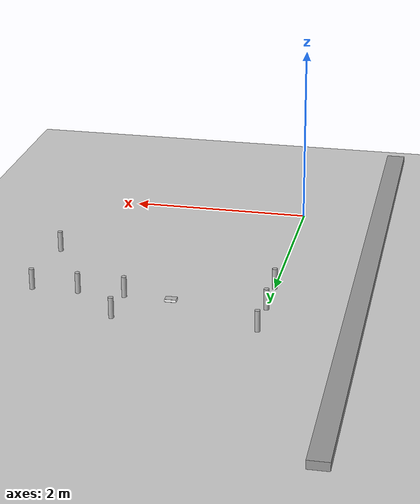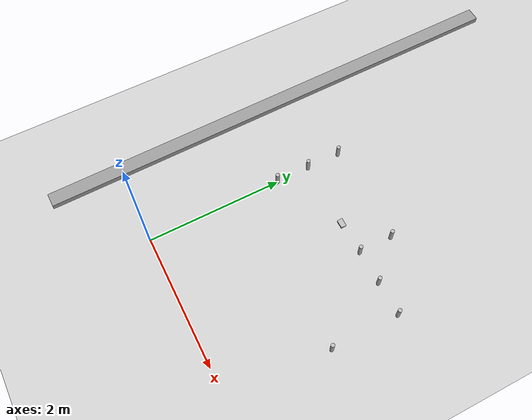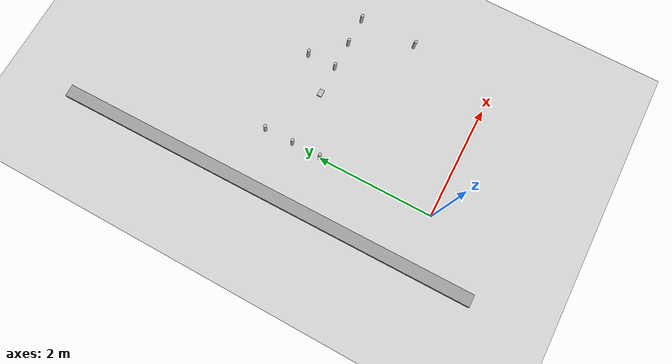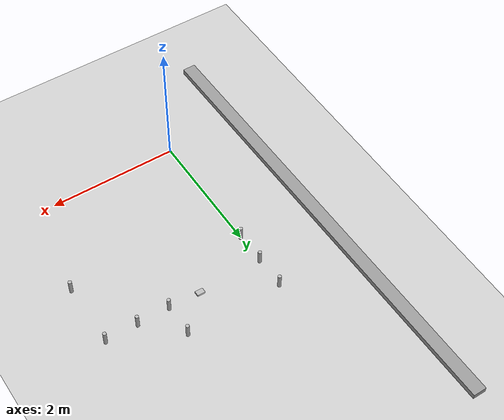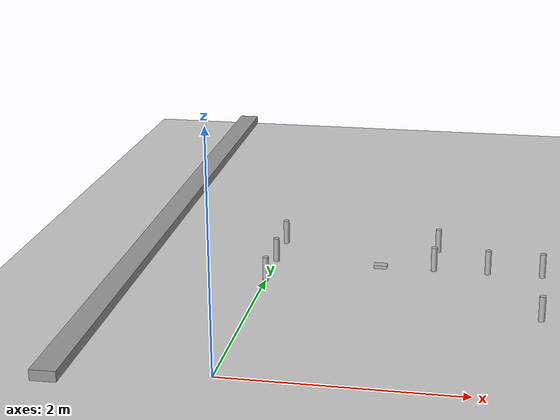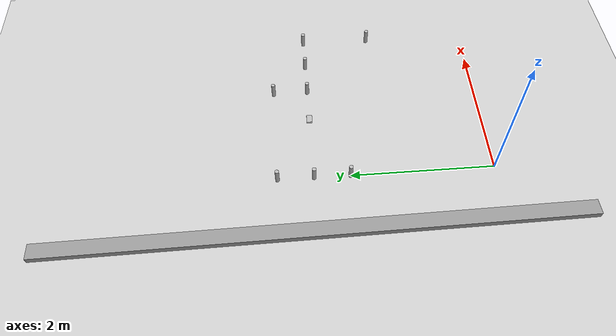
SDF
<sdf version="1.6">
 <world name="default">
  <model name="ground_plane">
   <static>1</static>
   <link name="link">
    <collision name="collision">
     <geometry><plane><normal>0 0 1</normal><size>100 100</size></plane></geometry>
     <surface><friction><ode><mu>100</mu><mu2>50</mu2></ode></friction></surface>
    </collision>
    <visual name="visual">
     <cast_shadows>0</cast_shadows>
     <geometry><plane><normal>0 0 1</normal><size>100 100</size></plane></geometry>
     <material>
      <script><uri>file://media/materials/scripts/gazebo.material</uri><name>Gazebo/Grey</name></script>
     </material>
    </visual>
   </link>
  </model>
  <model name="wall1">
   <static>1</static>
   <link name="link">
    <pose>0 0 0.42 0 -0 0</pose>
    <collision name="collision"><geometry><box><size>7 0.2 0.084</size></box></geometry></collision>
    <visual name="visual">
     <cast_shadows>0</cast_shadows>
     <geometry><box><size>7 0.2 0.084</size></box></geometry>
     <material>
      <script>
       <uri>model://grey_wall/materials/scripts</uri>
       <uri>model://grey_wall/materials/textures</uri>
       <name>vrc/grey_wall</name>
      </script>
     </material>
    </visual>
   </link>
   <pose>-1 2.5 0 0 -0 -1.55905</pose>
  </model>
  <model name="can0.02.0">
   <link name="link">
    <pose>0 0 0.115 0 -0 0</pose>
    <inertial>
     <mass>39</mass>
     <inertia><ixx>0.00058</ixx><ixy>0</ixy><ixz>0</ixz><iyy>0.00058</iyy><iyz>0</iyz><izz>0.00019</izz></inertia>
    </inertial>
    <collision name="collision">
     <geometry><cylinder><radius>0.0275</radius><length>0.23</length></cylinder></geometry>
    </collision>
    <visual name="visual">
     <geometry><cylinder><radius>0.0275</radius><length>0.23</length></cylinder></geometry>
     <material>
      <script>
       <uri>model://beer/materials/scripts</uri>
       <uri>model://beer/materials/textures</uri>
       <name>Beer/Diffuse</name>
      </script>
     </material>
    </visual>
   </link>
   <pose>0.0 2.0 -2e-06 1e-06 0 -9.5e-05</pose>
  </model>
  <model name="can0.02.5">
   <link name="link">
    <pose>0 0 0.115 0 -0 0</pose>
    <inertial>
     <mass>39</mass>
     <inertia><ixx>0.00058</ixx><ixy>0</ixy><ixz>0</ixz><iyy>0.00058</iyy><iyz>0</iyz><izz>0.00019</izz></inertia>
    </inertial>
    <collision name="collision">
     <geometry><cylinder><radius>0.0275</radius><length>0.23</length></cylinder></geometry>
    </collision>
    <visual name="visual">
     <geometry><cylinder><radius>0.0275</radius><length>0.23</length></cylinder></geometry>
     <material>
      <script>
       <uri>model://beer/materials/scripts</uri>
       <uri>model://beer/materials/textures</uri>
       <name>Beer/Diffuse</name>
      </script>
     </material>
    </visual>
   </link>
   <pose>0.0 2.5 -2e-06 1e-06 0 -9.5e-05</pose>
  </model>
  <model name="can0.03.0">
   <link name="link">
    <pose>0 0 0.115 0 -0 0</pose>
    <inertial>
     <mass>39</mass>
     <inertia><ixx>0.00058</ixx><ixy>0</ixy><ixz>0</ixz><iyy>0.00058</iyy><iyz>0</iyz><izz>0.00019</izz></inertia>
    </inertial>
    <collision name="collision">
     <geometry><cylinder><radius>0.0275</radius><length>0.23</length></cylinder></geometry>
    </collision>
    <visual name="visual">
     <geometry><cylinder><radius>0.0275</radius><length>0.23</length></cylinder></geometry>
     <material>
      <script>
       <uri>model://beer/materials/scripts</uri>
       <uri>model://beer/materials/textures</uri>
       <name>Beer/Diffuse</name>
      </script>
     </material>
    </visual>
   </link>
   <pose>0.0 3.0 -2e-06 1e-06 0 -9.5e-05</pose>
  </model>
  <model name="can1.52.5">
   <link name="link">
    <pose>0 0 0.115 0 -0 0</pose>
    <inertial>
     <mass>39</mass>
     <inertia><ixx>0.00058</ixx><ixy>0</ixy><ixz>0</ixz><iyy>0.00058</iyy><iyz>0</iyz><izz>0.00019</izz></inertia>
    </inertial>
    <collision name="collision">
     <geometry><cylinder><radius>0.0275</radius><length>0.23</length></cylinder></geometry>
    </collision>
    <visual name="visual">
     <geometry><cylinder><radius>0.0275</radius><length>0.23</length></cylinder></geometry>
     <material>
      <script>
       <uri>model://beer/materials/scripts</uri>
       <uri>model://beer/materials/textures</uri>
       <name>Beer/Diffuse</name>
      </script>
     </material>
    </visual>
   </link>
   <pose>1.5 2.5 -2e-06 1e-06 0 -9.5e-05</pose>
  </model>
  <model name="can1.53.0">
   <link name="link">
    <pose>0 0 0.115 0 -0 0</pose>
    <inertial>
     <mass>39</mass>
     <inertia><ixx>0.00058</ixx><ixy>0</ixy><ixz>0</ixz><iyy>0.00058</iyy><iyz>0</iyz><izz>0.00019</izz></inertia>
    </inertial>
    <collision name="collision">
     <geometry><cylinder><radius>0.0275</radius><length>0.23</length></cylinder></geometry>
    </collision>
    <visual name="visual">
     <geometry><cylinder><radius>0.0275</radius><length>0.23</length></cylinder></geometry>
     <material>
      <script>
       <uri>model://beer/materials/scripts</uri>
       <uri>model://beer/materials/textures</uri>
       <name>Beer/Diffuse</name>
      </script>
     </material>
    </visual>
   </link>
   <pose>1.5 3.0 -2e-06 1e-06 0 -9.5e-05</pose>
  </model>
  <model name="can2.02.5">
   <link name="link">
    <pose>0 0 0.115 0 -0 0</pose>
    <inertial>
     <mass>39</mass>
     <inertia><ixx>0.00058</ixx><ixy>0</ixy><ixz>0</ixz><iyy>0.00058</iyy><iyz>0</iyz><izz>0.00019</izz></inertia>
    </inertial>
    <collision name="collision">
     <geometry><cylinder><radius>0.0275</radius><length>0.23</length></cylinder></geometry>
    </collision>
    <visual name="visual">
     <geometry><cylinder><radius>0.0275</radius><length>0.23</length></cylinder></geometry>
     <material>
      <script>
       <uri>model://beer/materials/scripts</uri>
       <uri>model://beer/materials/textures</uri>
       <name>Beer/Diffuse</name>
      </script>
     </material>
    </visual>
   </link>
   <pose>2.0 2.5 -2e-06 1e-06 0 -9.5e-05</pose>
  </model>
  <model name="can2.51.5">
   <link name="link">
    <pose>0 0 0.115 0 -0 0</pose>
    <inertial>
     <mass>39</mass>
     <inertia><ixx>0.00058</ixx><ixy>0</ixy><ixz>0</ixz><iyy>0.00058</iyy><iyz>0</iyz><izz>0.00019</izz></inertia>
    </inertial>
    <collision name="collision">
     <geometry><cylinder><radius>0.0275</radius><length>0.23</length></cylinder></geometry>
    </collision>
    <visual name="visual">
     <geometry><cylinder><radius>0.0275</radius><length>0.23</length></cylinder></geometry>
     <material>
      <script>
       <uri>model://beer/materials/scripts</uri>
       <uri>model://beer/materials/textures</uri>
       <name>Beer/Diffuse</name>
      </script>
     </material>
    </visual>
   </link>
   <pose>2.5 1.5 -2e-06 1e-06 0 -9.5e-05</pose>
  </model>
  <model name="can2.52.5">
   <link name="link">
    <pose>0 0 0.115 0 -0 0</pose>
    <inertial>
     <mass>39</mass>
     <inertia><ixx>0.00058</ixx><ixy>0</ixy><ixz>0</ixz><iyy>0.00058</iyy><iyz>0</iyz><izz>0.00019</izz></inertia>
    </inertial>
    <collision name="collision">
     <geometry><cylinder><radius>0.0275</radius><length>0.23</length></cylinder></geometry>
    </collision>
    <visual name="visual">
     <geometry><cylinder><radius>0.0275</radius><length>0.23</length></cylinder></geometry>
     <material>
      <script>
       <uri>model://beer/materials/scripts</uri>
       <uri>model://beer/materials/textures</uri>
       <name>Beer/Diffuse</name>
      </script>
     </material>
    </visual>
   </link>
   <pose>2.5 2.5 -2e-06 1e-06 0 -9.5e-05</pose>
  </model>
  <model name="book_2">
   <link name="cover">
    <pose>0 -0.000108 0.015405 0 -0 0</pose>
    <visual name="visual">
     <geometry><box><size>0.1225 0.08 0.03</size></box></geometry>
     <material>
      <script>
       <uri>model://book_1/materials/scripts/book_2.material</uri>
       <uri>model://book_1/materials/textures/cover2.jpg</uri>
       <name>book_2</name>
      </script>
     </material>
    </visual>
    <collision name="collision">
     <geometry><box><size>0.1225 0.08 0.03</size></box></geometry>
     <surface><contact>/n</contact><friction><ode><mu>1000</mu><mu2>1000</mu2></ode></friction></surface>
    </collision>
    <inertial>
     <inertia><ixx>0.00058</ixx><ixy>0</ixy><ixz>0</ixz><iyy>0.00058</iyy><iyz>0</iyz><izz>0.00019</izz></inertia>
     <mass>0.05</mass>
    </inertial>
   </link>
   <link name="page">
    <pose>0 0.000608 0.015405 0 -0 0</pose>
    <visual name="visual">
     <geometry><box><size>0.12251 0.07931 0.028</size></box></geometry>
     <material>
      <lighting>1</lighting>
      <ambient>1 1 1 1</ambient>
      <diffuse>1 1 1 1</diffuse>
      <specular>0.01 0.01 0.01 1</specular>
      <emissive>0 0 0 1</emissive>
      <shader type="vertex"><normal_map>__default__</normal_map></shader>
     </material>
    </visual>
    <collision name="collision">
     <geometry><box><size>0.1225 0.08 0.03</size></box></geometry>
     <surface><contact>/n</contact><friction><ode><mu>1000</mu><mu2>1000</mu2></ode></friction></surface>
    </collision>
    <inertial>
     <inertia><ixx>0.00058</ixx><ixy>0</ixy><ixz>0</ixz><iyy>0.00058</iyy><iyz>0</iyz><izz>0.00019</izz></inertia>
     <mass>0.05</mass>
    </inertial>
   </link>
   <static>0</static>
   <pose>1.0 2.5 -0.000405 -1e-06 1e-06 0</pose>
  </model>
 </world>
</sdf>
